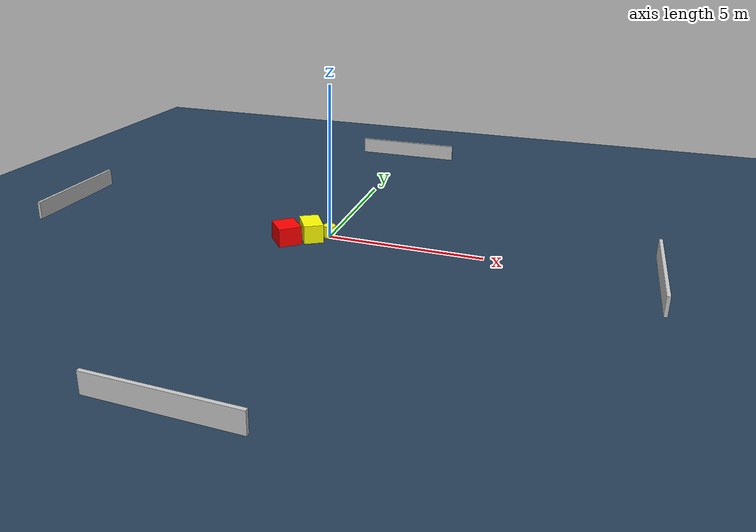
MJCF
<?xml version="1.0" ?>
<mujoco model="generated_environment">
  <option timestep="0.01" integrator="RK4" cone="elliptic"/>
  <default>
    <geom density="1"/>
  </default>
  <asset>
    <texture builtin="gradient" height="3072" name="skybox" rgb1="0.3 0.5 0.7" rgb2="0 0 0" type="skybox" width="512"/>
    <texture builtin="checker" height="300" name="groundplane" rgb1="0.2 0.3 0.4" rgb2="0.1 0.2 0.3" type="2d" width="300"/>
    <material name="groundplane" reflectance="0.2" texrepeat="5 5" texture="groundplane"/>
  </asset>
  <worldbody>
    <light dir="0 0 -1" directional="true" pos="0 0 1.5"/>
    <geom condim="3" friction="0.5 0.005 0.001" material="groundplane" name="floor" pos="0 0 0" size="0 0 0.05" type="plane"/>
    <body name="walls">
      <geom name="wall_1" condim="4" pos="-10.0 0.0 0.3" rgba="0.800000011920929 0.800000011920929 0.800000011920929 1.0" size="0.05 2.0 0.3" type="box"/>
      <geom name="wall_2" condim="4" pos="10.0 0.0 0.3" rgba="0.800000011920929 0.800000011920929 0.800000011920929 1.0" size="0.05 2.0 0.3" type="box"/>
      <geom name="wall_3" condim="4" pos="0.0 -10.0 0.3" rgba="0.800000011920929 0.800000011920929 0.800000011920929 1.0" size="2.0 0.05 0.3" type="box"/>
      <geom name="wall_4" condim="4" pos="0.0 10.0 0.3" rgba="0.800000011920929 0.800000011920929 0.800000011920929 1.0" size="2.0 0.05 0.3" type="box"/>
    </body>
    <body name="robot">
      <joint name="joint_x" type="slide" pos="0 0 0" axis="1 0 0"/>
      <joint name="joint_y" type="slide" pos="0 0 0" axis="0 1 0"/>
      <geom name="robot" type="cylinder" pos="0.0 0.0 0.2" size="0.2 0.2 0.0" mass="5.0" friction="1.0 0.005 0.0001" condim="4" rgba="1.0 1.0 0.0 1.0"/>
    </body>
    <body name="obstacle_1_movable">
      <geom name="obstacle_1_movable" condim="4" pos="-0.527915659850813 -0.29322298314560574 0.3" euler="0 0 31.564921181803903" friction="0.0 0.005 0.001" rgba="1.0 1.0 0.0 1.0" size="0.31783256950336586 0.48291798704661043 0.3" type="box" mass="0.1"/>
      <joint type="free"/>
    </body>
    <body name="obstacle_2_static">
      <geom name="obstacle_2_static" condim="4" pos="-1.169664394216701 -0.8288412112118898 0.3" euler="0 0 310.43193634759257" friction="0.0 0.005 0.001" rgba="1.0 0.0 0.0 1.0" size="0.4234421923766334 0.37338168449384357 0.3" type="box"/>
    </body>
  </worldbody>
  <actuator>
    <motor name="actuator_x" joint="joint_x" gear="1" ctrlrange="-1 1"/>
    <motor name="actuator_y" joint="joint_y" gear="1" ctrlrange="-1 1"/>
  </actuator>
</mujoco>
